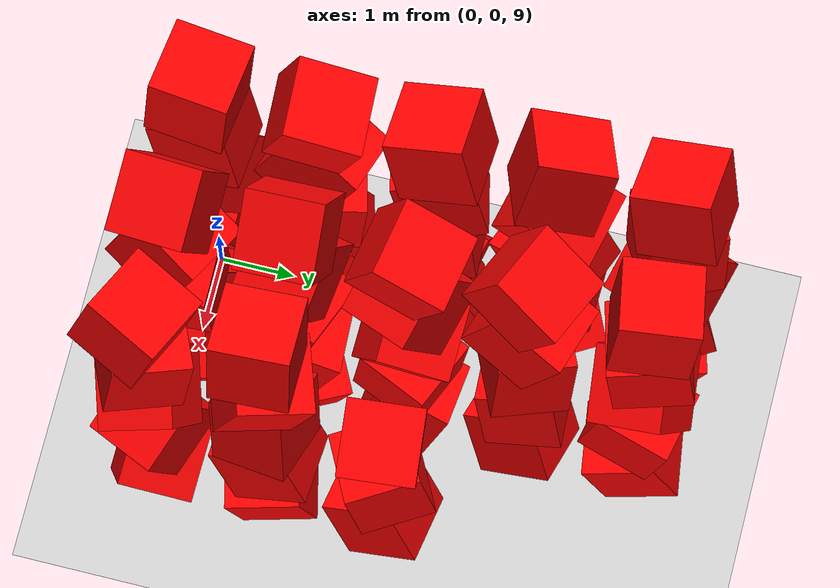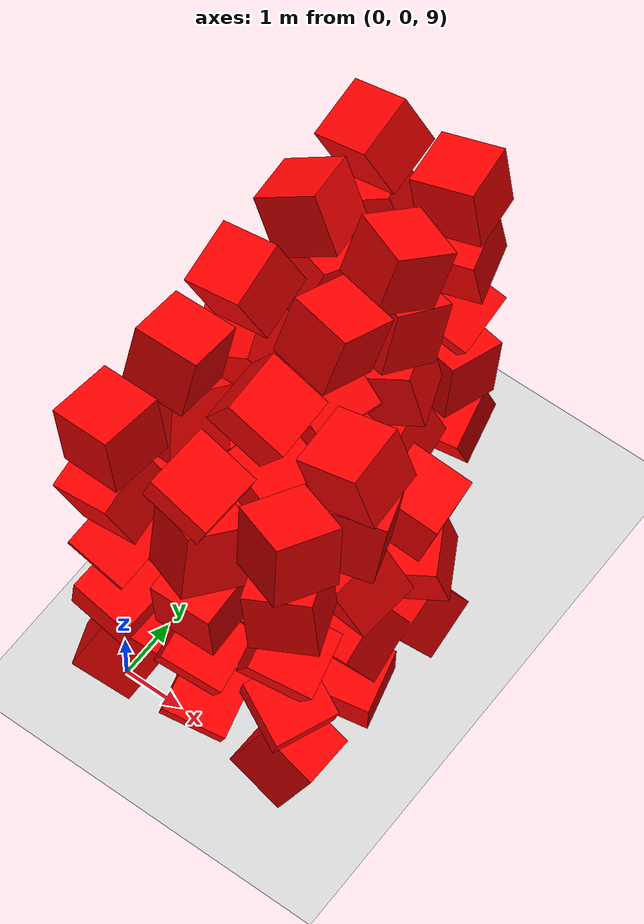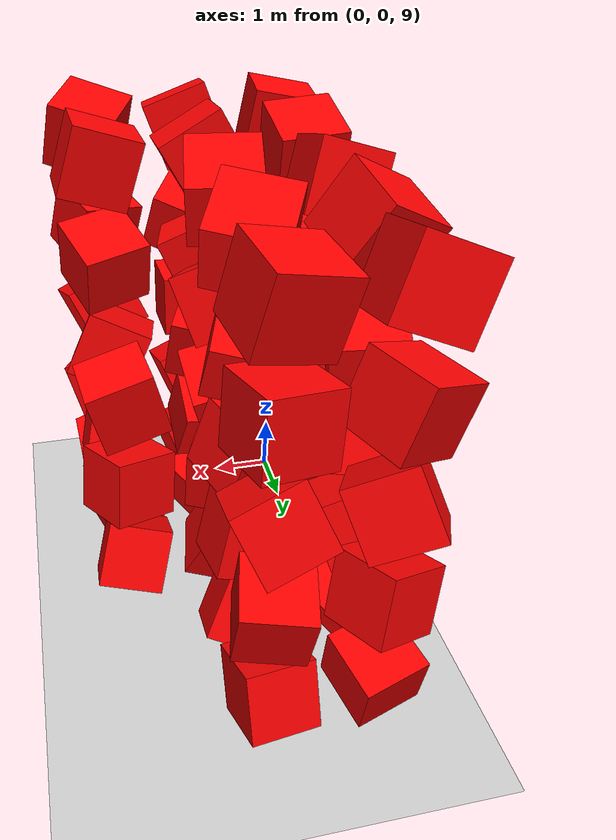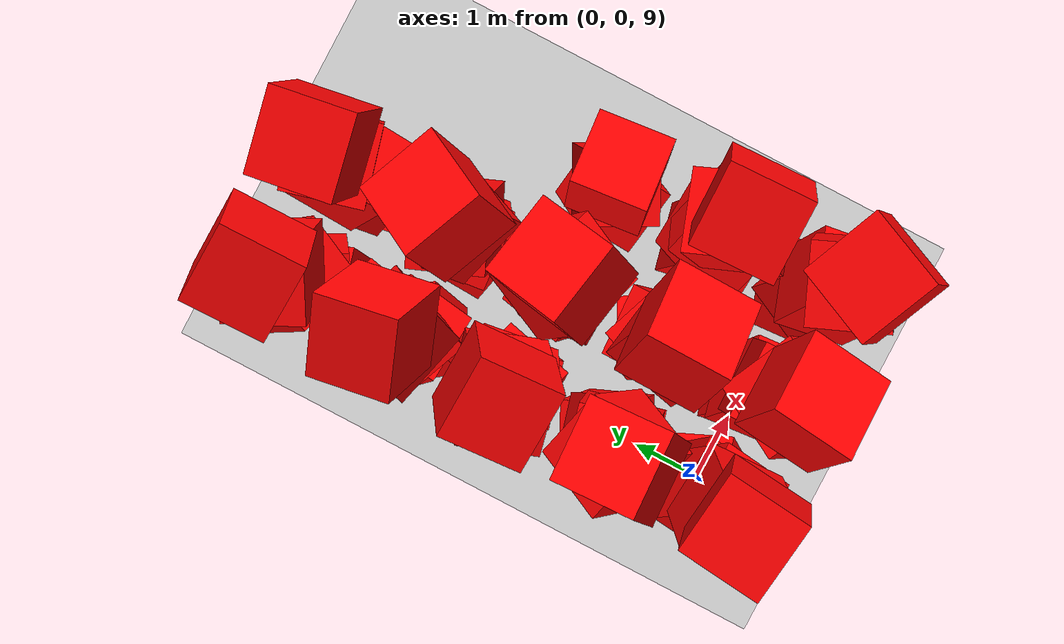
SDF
<sdf version="1.6">
 <world name="default">
  <model name="ground_plane">
   <pose>0 0 9  0 0 0</pose>
   <static>1</static>
   <link name="link">
    <collision name="collision">
     <geometry><plane><normal>0 0 1</normal><size>100 100</size></plane></geometry>
     <surface><bounce><restitution_coefficient>0</restitution_coefficient></bounce></surface>
    </collision>
    <visual name="visual">
     <geometry><plane><normal>0 0 1</normal><size>100 100</size></plane></geometry>
     <material>
      <ambient>0.8 0.8 0.8 1</ambient>
      <diffuse>0.8 0.8 0.8 1</diffuse>
      <specular>0.8 0.8 0.8 1</specular>
     </material>
    </visual>
   </link>
  </model>
  <model name="model_0_0_0">
   <pose>0 0 10 -0.445969 0.437062 0.232212</pose>
   <link name="box_link">
    <inertial>
     <inertia><ixx>1</ixx><ixy>0</ixy><ixz>0</ixz><iyy>1</iyy><iyz>0</iyz><izz>1</izz></inertia>
     <mass>6</mass>
    </inertial>
    <collision name="box_collision">
     <geometry><box><size>1 1 1</size></box></geometry>
     <surface><bounce><restitution_coefficient>0</restitution_coefficient></bounce></surface>
    </collision>
    <visual name="box_visual">
     <geometry><box><size>1 1 1</size></box></geometry>
     <material><ambient>1 0 0 1</ambient><diffuse>1 0 0 1</diffuse><specular>1 0 0 1</specular></material>
    </visual>
   </link>
  </model>
  <model name="model_0_0_1">
   <pose>0 0 11.5 0.162706 0.237268 -0.04658</pose>
   <link name="box_link">
    <inertial>
     <inertia><ixx>1</ixx><ixy>0</ixy><ixz>0</ixz><iyy>1</iyy><iyz>0</iyz><izz>1</izz></inertia>
     <mass>6</mass>
    </inertial>
    <collision name="box_collision">
     <geometry><box><size>1 1 1</size></box></geometry>
     <surface><bounce><restitution_coefficient>0</restitution_coefficient></bounce></surface>
    </collision>
    <visual name="box_visual">
     <geometry><box><size>1 1 1</size></box></geometry>
     <material><ambient>1 0 0 1</ambient><diffuse>1 0 0 1</diffuse><specular>1 0 0 1</specular></material>
    </visual>
   </link>
  </model>
  <model name="model_0_0_2">
   <pose>0 0 13 0.353318 0.359839 0.00596</pose>
   <link name="box_link">
    <inertial>
     <inertia><ixx>1</ixx><ixy>0</ixy><ixz>0</ixz><iyy>1</iyy><iyz>0</iyz><izz>1</izz></inertia>
     <mass>6</mass>
    </inertial>
    <collision name="box_collision">
     <geometry><box><size>1 1 1</size></box></geometry>
     <surface><bounce><restitution_coefficient>0</restitution_coefficient></bounce></surface>
    </collision>
    <visual name="box_visual">
     <geometry><box><size>1 1 1</size></box></geometry>
     <material><ambient>1 0 0 1</ambient><diffuse>1 0 0 1</diffuse><specular>1 0 0 1</specular></material>
    </visual>
   </link>
  </model>
  <model name="model_0_0_3">
   <pose>0 0 14.5 0.279494 -0.284371 -0.051229</pose>
   <link name="box_link">
    <inertial>
     <inertia><ixx>1</ixx><ixy>0</ixy><ixz>0</ixz><iyy>1</iyy><iyz>0</iyz><izz>1</izz></inertia>
     <mass>6</mass>
    </inertial>
    <collision name="box_collision">
     <geometry><box><size>1 1 1</size></box></geometry>
     <surface><bounce><restitution_coefficient>0</restitution_coefficient></bounce></surface>
    </collision>
    <visual name="box_visual">
     <geometry><box><size>1 1 1</size></box></geometry>
     <material><ambient>1 0 0 1</ambient><diffuse>1 0 0 1</diffuse><specular>1 0 0 1</specular></material>
    </visual>
   </link>
  </model>
  <model name="model_0_0_4">
   <pose>0 0 16 -0.03669 -0.197186 -0.095349</pose>
   <link name="box_link">
    <inertial>
     <inertia><ixx>1</ixx><ixy>0</ixy><ixz>0</ixz><iyy>1</iyy><iyz>0</iyz><izz>1</izz></inertia>
     <mass>6</mass>
    </inertial>
    <collision name="box_collision">
     <geometry><box><size>1 1 1</size></box></geometry>
     <surface><bounce><restitution_coefficient>0</restitution_coefficient></bounce></surface>
    </collision>
    <visual name="box_visual">
     <geometry><box><size>1 1 1</size></box></geometry>
     <material><ambient>1 0 0 1</ambient><diffuse>1 0 0 1</diffuse><specular>1 0 0 1</specular></material>
    </visual>
   </link>
  </model>
  <model name="model_0_1_0">
   <pose>0 1.5 10 -0.444529 -0.146822 0.471578</pose>
   <link name="box_link">
    <inertial>
     <inertia><ixx>1</ixx><ixy>0</ixy><ixz>0</ixz><iyy>1</iyy><iyz>0</iyz><izz>1</izz></inertia>
     <mass>6</mass>
    </inertial>
    <collision name="box_collision">
     <geometry><box><size>1 1 1</size></box></geometry>
     <surface><bounce><restitution_coefficient>0</restitution_coefficient></bounce></surface>
    </collision>
    <visual name="box_visual">
     <geometry><box><size>1 1 1</size></box></geometry>
     <material><ambient>1 0 0 1</ambient><diffuse>1 0 0 1</diffuse><specular>1 0 0 1</specular></material>
    </visual>
   </link>
  </model>
  <model name="model_0_1_1">
   <pose>0 1.5 11.5 0.313697 0.087827 0.266329</pose>
   <link name="box_link">
    <inertial>
     <inertia><ixx>1</ixx><ixy>0</ixy><ixz>0</ixz><iyy>1</iyy><iyz>0</iyz><izz>1</izz></inertia>
     <mass>6</mass>
    </inertial>
    <collision name="box_collision">
     <geometry><box><size>1 1 1</size></box></geometry>
     <surface><bounce><restitution_coefficient>0</restitution_coefficient></bounce></surface>
    </collision>
    <visual name="box_visual">
     <geometry><box><size>1 1 1</size></box></geometry>
     <material><ambient>1 0 0 1</ambient><diffuse>1 0 0 1</diffuse><specular>1 0 0 1</specular></material>
    </visual>
   </link>
  </model>
  <model name="model_0_1_2">
   <pose>0 1.5 13 -0.097363 -0.144194 0.248824</pose>
   <link name="box_link">
    <inertial>
     <inertia><ixx>1</ixx><ixy>0</ixy><ixz>0</ixz><iyy>1</iyy><iyz>0</iyz><izz>1</izz></inertia>
     <mass>6</mass>
    </inertial>
    <collision name="box_collision">
     <geometry><box><size>1 1 1</size></box></geometry>
     <surface><bounce><restitution_coefficient>0</restitution_coefficient></bounce></surface>
    </collision>
    <visual name="box_visual">
     <geometry><box><size>1 1 1</size></box></geometry>
     <material><ambient>1 0 0 1</ambient><diffuse>1 0 0 1</diffuse><specular>1 0 0 1</specular></material>
    </visual>
   </link>
  </model>
  <model name="model_0_1_3">
   <pose>0 1.5 14.5 -0.411716 -0.452408 -0.238945</pose>
   <link name="box_link">
    <inertial>
     <inertia><ixx>1</ixx><ixy>0</ixy><ixz>0</ixz><iyy>1</iyy><iyz>0</iyz><izz>1</izz></inertia>
     <mass>6</mass>
    </inertial>
    <collision name="box_collision">
     <geometry><box><size>1 1 1</size></box></geometry>
     <surface><bounce><restitution_coefficient>0</restitution_coefficient></bounce></surface>
    </collision>
    <visual name="box_visual">
     <geometry><box><size>1 1 1</size></box></geometry>
     <material><ambient>1 0 0 1</ambient><diffuse>1 0 0 1</diffuse><specular>1 0 0 1</specular></material>
    </visual>
   </link>
  </model>
  <model name="model_0_1_4">
   <pose>0 1.5 16 -0.301174 0.051928 0.040391</pose>
   <link name="box_link">
    <inertial>
     <inertia><ixx>1</ixx><ixy>0</ixy><ixz>0</ixz><iyy>1</iyy><iyz>0</iyz><izz>1</izz></inertia>
     <mass>6</mass>
    </inertial>
    <collision name="box_collision">
     <geometry><box><size>1 1 1</size></box></geometry>
     <surface><bounce><restitution_coefficient>0</restitution_coefficient></bounce></surface>
    </collision>
    <visual name="box_visual">
     <geometry><box><size>1 1 1</size></box></geometry>
     <material><ambient>1 0 0 1</ambient><diffuse>1 0 0 1</diffuse><specular>1 0 0 1</specular></material>
    </visual>
   </link>
  </model>
  <model name="model_0_2_0">
   <pose>0 3 10 0.325412 -0.150021 0.2704</pose>
   <link name="box_link">
    <inertial>
     <inertia><ixx>1</ixx><ixy>0</ixy><ixz>0</ixz><iyy>1</iyy><iyz>0</iyz><izz>1</izz></inertia>
     <mass>6</mass>
    </inertial>
    <collision name="box_collision">
     <geometry><box><size>1 1 1</size></box></geometry>
     <surface><bounce><restitution_coefficient>0</restitution_coefficient></bounce></surface>
    </collision>
    <visual name="box_visual">
     <geometry><box><size>1 1 1</size></box></geometry>
     <material><ambient>1 0 0 1</ambient><diffuse>1 0 0 1</diffuse><specular>1 0 0 1</specular></material>
    </visual>
   </link>
  </model>
  <model name="model_0_2_1">
   <pose>0 3 11.5 -0.094698 0.330572 -0.26515</pose>
   <link name="box_link">
    <inertial>
     <inertia><ixx>1</ixx><ixy>0</ixy><ixz>0</ixz><iyy>1</iyy><iyz>0</iyz><izz>1</izz></inertia>
     <mass>6</mass>
    </inertial>
    <collision name="box_collision">
     <geometry><box><size>1 1 1</size></box></geometry>
     <surface><bounce><restitution_coefficient>0</restitution_coefficient></bounce></surface>
    </collision>
    <visual name="box_visual">
     <geometry><box><size>1 1 1</size></box></geometry>
     <material><ambient>1 0 0 1</ambient><diffuse>1 0 0 1</diffuse><specular>1 0 0 1</specular></material>
    </visual>
   </link>
  </model>
  <model name="model_0_2_2">
   <pose>0 3 13 0.198001 -0.426438 0.054277</pose>
   <link name="box_link">
    <inertial>
     <inertia><ixx>1</ixx><ixy>0</ixy><ixz>0</ixz><iyy>1</iyy><iyz>0</iyz><izz>1</izz></inertia>
     <mass>6</mass>
    </inertial>
    <collision name="box_collision">
     <geometry><box><size>1 1 1</size></box></geometry>
     <surface><bounce><restitution_coefficient>0</restitution_coefficient></bounce></surface>
    </collision>
    <visual name="box_visual">
     <geometry><box><size>1 1 1</size></box></geometry>
     <material><ambient>1 0 0 1</ambient><diffuse>1 0 0 1</diffuse><specular>1 0 0 1</specular></material>
    </visual>
   </link>
  </model>
  <model name="model_0_2_3">
   <pose>0 3 14.5 0.263427 -0.444841 0.21894</pose>
   <link name="box_link">
    <inertial>
     <inertia><ixx>1</ixx><ixy>0</ixy><ixz>0</ixz><iyy>1</iyy><iyz>0</iyz><izz>1</izz></inertia>
     <mass>6</mass>
    </inertial>
    <collision name="box_collision">
     <geometry><box><size>1 1 1</size></box></geometry>
     <surface><bounce><restitution_coefficient>0</restitution_coefficient></bounce></surface>
    </collision>
    <visual name="box_visual">
     <geometry><box><size>1 1 1</size></box></geometry>
     <material><ambient>1 0 0 1</ambient><diffuse>1 0 0 1</diffuse><specular>1 0 0 1</specular></material>
    </visual>
   </link>
  </model>
  <model name="model_0_2_4">
   <pose>0 3 16 0.292098 -0.297187 -0.040628</pose>
   <link name="box_link">
    <inertial>
     <inertia><ixx>1</ixx><ixy>0</ixy><ixz>0</ixz><iyy>1</iyy><iyz>0</iyz><izz>1</izz></inertia>
     <mass>6</mass>
    </inertial>
    <collision name="box_collision">
     <geometry><box><size>1 1 1</size></box></geometry>
     <surface><bounce><restitution_coefficient>0</restitution_coefficient></bounce></surface>
    </collision>
    <visual name="box_visual">
     <geometry><box><size>1 1 1</size></box></geometry>
     <material><ambient>1 0 0 1</ambient><diffuse>1 0 0 1</diffuse><specular>1 0 0 1</specular></material>
    </visual>
   </link>
  </model>
  <model name="model_0_3_0">
   <pose>0 4.5 10 -0.417755 0.391808 0.464083</pose>
   <link name="box_link">
    <inertial>
     <inertia><ixx>1</ixx><ixy>0</ixy><ixz>0</ixz><iyy>1</iyy><iyz>0</iyz><izz>1</izz></inertia>
     <mass>6</mass>
    </inertial>
    <collision name="box_collision">
     <geometry><box><size>1 1 1</size></box></geometry>
     <surface><bounce><restitution_coefficient>0</restitution_coefficient></bounce></surface>
    </collision>
    <visual name="box_visual">
     <geometry><box><size>1 1 1</size></box></geometry>
     <material><ambient>1 0 0 1</ambient><diffuse>1 0 0 1</diffuse><specular>1 0 0 1</specular></material>
    </visual>
   </link>
  </model>
  <model name="model_0_3_1">
   <pose>0 4.5 11.5 0.300886 0.329793 -0.049279</pose>
   <link name="box_link">
    <inertial>
     <inertia><ixx>1</ixx><ixy>0</ixy><ixz>0</ixz><iyy>1</iyy><iyz>0</iyz><izz>1</izz></inertia>
     <mass>6</mass>
    </inertial>
    <collision name="box_collision">
     <geometry><box><size>1 1 1</size></box></geometry>
     <surface><bounce><restitution_coefficient>0</restitution_coefficient></bounce></surface>
    </collision>
    <visual name="box_visual">
     <geometry><box><size>1 1 1</size></box></geometry>
     <material><ambient>1 0 0 1</ambient><diffuse>1 0 0 1</diffuse><specular>1 0 0 1</specular></material>
    </visual>
   </link>
  </model>
  <model name="model_0_3_2">
   <pose>0 4.5 13 0.46908 0.010174 -0.382881</pose>
   <link name="box_link">
    <inertial>
     <inertia><ixx>1</ixx><ixy>0</ixy><ixz>0</ixz><iyy>1</iyy><iyz>0</iyz><izz>1</izz></inertia>
     <mass>6</mass>
    </inertial>
    <collision name="box_collision">
     <geometry><box><size>1 1 1</size></box></geometry>
     <surface><bounce><restitution_coefficient>0</restitution_coefficient></bounce></surface>
    </collision>
    <visual name="box_visual">
     <geometry><box><size>1 1 1</size></box></geometry>
     <material><ambient>1 0 0 1</ambient><diffuse>1 0 0 1</diffuse><specular>1 0 0 1</specular></material>
    </visual>
   </link>
  </model>
  <model name="model_0_3_3">
   <pose>0 4.5 14.5 -0.49055 0.081027 -0.24292</pose>
   <link name="box_link">
    <inertial>
     <inertia><ixx>1</ixx><ixy>0</ixy><ixz>0</ixz><iyy>1</iyy><iyz>0</iyz><izz>1</izz></inertia>
     <mass>6</mass>
    </inertial>
    <collision name="box_collision">
     <geometry><box><size>1 1 1</size></box></geometry>
     <surface><bounce><restitution_coefficient>0</restitution_coefficient></bounce></surface>
    </collision>
    <visual name="box_visual">
     <geometry><box><size>1 1 1</size></box></geometry>
     <material><ambient>1 0 0 1</ambient><diffuse>1 0 0 1</diffuse><specular>1 0 0 1</specular></material>
    </visual>
   </link>
  </model>
  <model name="model_0_3_4">
   <pose>0 4.5 16 -0.314394 -0.475655 0.323114</pose>
   <link name="box_link">
    <inertial>
     <inertia><ixx>1</ixx><ixy>0</ixy><ixz>0</ixz><iyy>1</iyy><iyz>0</iyz><izz>1</izz></inertia>
     <mass>6</mass>
    </inertial>
    <collision name="box_collision">
     <geometry><box><size>1 1 1</size></box></geometry>
     <surface><bounce><restitution_coefficient>0</restitution_coefficient></bounce></surface>
    </collision>
    <visual name="box_visual">
     <geometry><box><size>1 1 1</size></box></geometry>
     <material><ambient>1 0 0 1</ambient><diffuse>1 0 0 1</diffuse><specular>1 0 0 1</specular></material>
    </visual>
   </link>
  </model>
  <model name="model_0_4_0">
   <pose>0 6 10 -0.227574 0.107794 0.261805</pose>
   <link name="box_link">
    <inertial>
     <inertia><ixx>1</ixx><ixy>0</ixy><ixz>0</ixz><iyy>1</iyy><iyz>0</iyz><izz>1</izz></inertia>
     <mass>6</mass>
    </inertial>
    <collision name="box_collision">
     <geometry><box><size>1 1 1</size></box></geometry>
     <surface><bounce><restitution_coefficient>0</restitution_coefficient></bounce></surface>
    </collision>
    <visual name="box_visual">
     <geometry><box><size>1 1 1</size></box></geometry>
     <material><ambient>1 0 0 1</ambient><diffuse>1 0 0 1</diffuse><specular>1 0 0 1</specular></material>
    </visual>
   </link>
  </model>
  <model name="model_0_4_1">
   <pose>0 6 11.5 0.170217 -0.314235 0.418764</pose>
   <link name="box_link">
    <inertial>
     <inertia><ixx>1</ixx><ixy>0</ixy><ixz>0</ixz><iyy>1</iyy><iyz>0</iyz><izz>1</izz></inertia>
     <mass>6</mass>
    </inertial>
    <collision name="box_collision">
     <geometry><box><size>1 1 1</size></box></geometry>
     <surface><bounce><restitution_coefficient>0</restitution_coefficient></bounce></surface>
    </collision>
    <visual name="box_visual">
     <geometry><box><size>1 1 1</size></box></geometry>
     <material><ambient>1 0 0 1</ambient><diffuse>1 0 0 1</diffuse><specular>1 0 0 1</specular></material>
    </visual>
   </link>
  </model>
  <model name="model_0_4_2">
   <pose>0 6 13 0.400062 0.448993 -0.292275</pose>
   <link name="box_link">
    <inertial>
     <inertia><ixx>1</ixx><ixy>0</ixy><ixz>0</ixz><iyy>1</iyy><iyz>0</iyz><izz>1</izz></inertia>
     <mass>6</mass>
    </inertial>
    <collision name="box_collision">
     <geometry><box><size>1 1 1</size></box></geometry>
     <surface><bounce><restitution_coefficient>0</restitution_coefficient></bounce></surface>
    </collision>
    <visual name="box_visual">
     <geometry><box><size>1 1 1</size></box></geometry>
     <material><ambient>1 0 0 1</ambient><diffuse>1 0 0 1</diffuse><specular>1 0 0 1</specular></material>
    </visual>
   </link>
  </model>
  <model name="model_0_4_3">
   <pose>0 6 14.5 -0.092668 -0.332408 0.475542</pose>
   <link name="box_link">
    <inertial>
     <inertia><ixx>1</ixx><ixy>0</ixy><ixz>0</ixz><iyy>1</iyy><iyz>0</iyz><izz>1</izz></inertia>
     <mass>6</mass>
    </inertial>
    <collision name="box_collision">
     <geometry><box><size>1 1 1</size></box></geometry>
     <surface><bounce><restitution_coefficient>0</restitution_coefficient></bounce></surface>
    </collision>
    <visual name="box_visual">
     <geometry><box><size>1 1 1</size></box></geometry>
     <material><ambient>1 0 0 1</ambient><diffuse>1 0 0 1</diffuse><specular>1 0 0 1</specular></material>
    </visual>
   </link>
  </model>
  <model name="model_0_4_4">
   <pose>0 6 16 0.257004 -0.379118 -0.092636</pose>
   <link name="box_link">
    <inertial>
     <inertia><ixx>1</ixx><ixy>0</ixy><ixz>0</ixz><iyy>1</iyy><iyz>0</iyz><izz>1</izz></inertia>
     <mass>6</mass>
    </inertial>
    <collision name="box_collision">
     <geometry><box><size>1 1 1</size></box></geometry>
     <surface><bounce><restitution_coefficient>0</restitution_coefficient></bounce></surface>
    </collision>
    <visual name="box_visual">
     <geometry><box><size>1 1 1</size></box></geometry>
     <material><ambient>1 0 0 1</ambient><diffuse>1 0 0 1</diffuse><specular>1 0 0 1</specular></material>
    </visual>
   </link>
  </model>
  <model name="model_1_0_0">
   <pose>1.5 0 10 0.354994 0.245428 0.266498</pose>
   <link name="box_link">
    <inertial>
     <inertia><ixx>1</ixx><ixy>0</ixy><ixz>0</ixz><iyy>1</iyy><iyz>0</iyz><izz>1</izz></inertia>
     <mass>6</mass>
    </inertial>
    <collision name="box_collision">
     <geometry><box><size>1 1 1</size></box></geometry>
     <surface><bounce><restitution_coefficient>0</restitution_coefficient></bounce></surface>
    </collision>
    <visual name="box_visual">
     <geometry><box><size>1 1 1</size></box></geometry>
     <material><ambient>1 0 0 1</ambient><diffuse>1 0 0 1</diffuse><specular>1 0 0 1</specular></material>
    </visual>
   </link>
  </model>
  <model name="model_1_0_1">
   <pose>1.5 0 11.5 0.331195 0.322869 0.196046</pose>
   <link name="box_link">
    <inertial>
     <inertia><ixx>1</ixx><ixy>0</ixy><ixz>0</ixz><iyy>1</iyy><iyz>0</iyz><izz>1</izz></inertia>
     <mass>6</mass>
    </inertial>
    <collision name="box_collision">
     <geometry><box><size>1 1 1</size></box></geometry>
     <surface><bounce><restitution_coefficient>0</restitution_coefficient></bounce></surface>
    </collision>
    <visual name="box_visual">
     <geometry><box><size>1 1 1</size></box></geometry>
     <material><ambient>1 0 0 1</ambient><diffuse>1 0 0 1</diffuse><specular>1 0 0 1</specular></material>
    </visual>
   </link>
  </model>
  <model name="model_1_0_2">
   <pose>1.5 0 13 0.068366 -0.022949 0.020605</pose>
   <link name="box_link">
    <inertial>
     <inertia><ixx>1</ixx><ixy>0</ixy><ixz>0</ixz><iyy>1</iyy><iyz>0</iyz><izz>1</izz></inertia>
     <mass>6</mass>
    </inertial>
    <collision name="box_collision">
     <geometry><box><size>1 1 1</size></box></geometry>
     <surface><bounce><restitution_coefficient>0</restitution_coefficient></bounce></surface>
    </collision>
    <visual name="box_visual">
     <geometry><box><size>1 1 1</size></box></geometry>
     <material><ambient>1 0 0 1</ambient><diffuse>1 0 0 1</diffuse><specular>1 0 0 1</specular></material>
    </visual>
   </link>
  </model>
  <model name="model_1_0_3">
   <pose>1.5 0 14.5 -0.299301 -0.334679 -0.422738</pose>
   <link name="box_link">
    <inertial>
     <inertia><ixx>1</ixx><ixy>0</ixy><ixz>0</ixz><iyy>1</iyy><iyz>0</iyz><izz>1</izz></inertia>
     <mass>6</mass>
    </inertial>
    <collision name="box_collision">
     <geometry><box><size>1 1 1</size></box></geometry>
     <surface><bounce><restitution_coefficient>0</restitution_coefficient></bounce></surface>
    </collision>
    <visual name="box_visual">
     <geometry><box><size>1 1 1</size></box></geometry>
     <material><ambient>1 0 0 1</ambient><diffuse>1 0 0 1</diffuse><specular>1 0 0 1</specular></material>
    </visual>
   </link>
  </model>
  <model name="model_1_0_4">
   <pose>1.5 0 16 0.187896 0.342837 -0.038506</pose>
   <link name="box_link">
    <inertial>
     <inertia><ixx>1</ixx><ixy>0</ixy><ixz>0</ixz><iyy>1</iyy><iyz>0</iyz><izz>1</izz></inertia>
     <mass>6</mass>
    </inertial>
    <collision name="box_collision">
     <geometry><box><size>1 1 1</size></box></geometry>
     <surface><bounce><restitution_coefficient>0</restitution_coefficient></bounce></surface>
    </collision>
    <visual name="box_visual">
     <geometry><box><size>1 1 1</size></box></geometry>
     <material><ambient>1 0 0 1</ambient><diffuse>1 0 0 1</diffuse><specular>1 0 0 1</specular></material>
    </visual>
   </link>
  </model>
  <model name="model_1_1_0">
   <pose>1.5 1.5 10 -0.175396 0.200267 0.47763</pose>
   <link name="box_link">
    <inertial>
     <inertia><ixx>1</ixx><ixy>0</ixy><ixz>0</ixz><iyy>1</iyy><iyz>0</iyz><izz>1</izz></inertia>
     <mass>6</mass>
    </inertial>
    <collision name="box_collision">
     <geometry><box><size>1 1 1</size></box></geometry>
     <surface><bounce><restitution_coefficient>0</restitution_coefficient></bounce></surface>
    </collision>
    <visual name="box_visual">
     <geometry><box><size>1 1 1</size></box></geometry>
     <material><ambient>1 0 0 1</ambient><diffuse>1 0 0 1</diffuse><specular>1 0 0 1</specular></material>
    </visual>
   </link>
  </model>
  <model name="model_1_1_1">
   <pose>1.5 1.5 11.5 -0.395518 -0.123414 0.050976</pose>
   <link name="box_link">
    <inertial>
     <inertia><ixx>1</ixx><ixy>0</ixy><ixz>0</ixz><iyy>1</iyy><iyz>0</iyz><izz>1</izz></inertia>
     <mass>6</mass>
    </inertial>
    <collision name="box_collision">
     <geometry><box><size>1 1 1</size></box></geometry>
     <surface><bounce><restitution_coefficient>0</restitution_coefficient></bounce></surface>
    </collision>
    <visual name="box_visual">
     <geometry><box><size>1 1 1</size></box></geometry>
     <material><ambient>1 0 0 1</ambient><diffuse>1 0 0 1</diffuse><specular>1 0 0 1</specular></material>
    </visual>
   </link>
  </model>
  <model name="model_1_1_2">
   <pose>1.5 1.5 13 -0.183462 -0.18323 -0.351025</pose>
   <link name="box_link">
    <inertial>
     <inertia><ixx>1</ixx><ixy>0</ixy><ixz>0</ixz><iyy>1</iyy><iyz>0</iyz><izz>1</izz></inertia>
     <mass>6</mass>
    </inertial>
    <collision name="box_collision">
     <geometry><box><size>1 1 1</size></box></geometry>
     <surface><bounce><restitution_coefficient>0</restitution_coefficient></bounce></surface>
    </collision>
    <visual name="box_visual">
     <geometry><box><size>1 1 1</size></box></geometry>
     <material><ambient>1 0 0 1</ambient><diffuse>1 0 0 1</diffuse><specular>1 0 0 1</specular></material>
    </visual>
   </link>
  </model>
  <model name="model_1_1_3">
   <pose>1.5 1.5 14.5 0.096896 0.428017 -0.173226</pose>
   <link name="box_link">
    <inertial>
     <inertia><ixx>1</ixx><ixy>0</ixy><ixz>0</ixz><iyy>1</iyy><iyz>0</iyz><izz>1</izz></inertia>
     <mass>6</mass>
    </inertial>
    <collision name="box_collision">
     <geometry><box><size>1 1 1</size></box></geometry>
     <surface><bounce><restitution_coefficient>0</restitution_coefficient></bounce></surface>
    </collision>
    <visual name="box_visual">
     <geometry><box><size>1 1 1</size></box></geometry>
     <material><ambient>1 0 0 1</ambient><diffuse>1 0 0 1</diffuse><specular>1 0 0 1</specular></material>
    </visual>
   </link>
  </model>
  <model name="model_1_1_4">
   <pose>1.5 1.5 16 0.131744 0.494762 0.05059</pose>
   <link name="box_link">
    <inertial>
     <inertia><ixx>1</ixx><ixy>0</ixy><ixz>0</ixz><iyy>1</iyy><iyz>0</iyz><izz>1</izz></inertia>
     <mass>6</mass>
    </inertial>
    <collision name="box_collision">
     <geometry><box><size>1 1 1</size></box></geometry>
     <surface><bounce><restitution_coefficient>0</restitution_coefficient></bounce></surface>
    </collision>
    <visual name="box_visual">
     <geometry><box><size>1 1 1</size></box></geometry>
     <material><ambient>1 0 0 1</ambient><diffuse>1 0 0 1</diffuse><specular>1 0 0 1</specular></material>
    </visual>
   </link>
  </model>
  <model name="model_1_2_0">
   <pose>1.5 3 10 -0.304631 -0.370278 -0.084566</pose>
   <link name="box_link">
    <inertial>
     <inertia><ixx>1</ixx><ixy>0</ixy><ixz>0</ixz><iyy>1</iyy><iyz>0</iyz><izz>1</izz></inertia>
     <mass>6</mass>
    </inertial>
    <collision name="box_collision">
     <geometry><box><size>1 1 1</size></box></geometry>
     <surface><bounce><restitution_coefficient>0</restitution_coefficient></bounce></surface>
    </collision>
    <visual name="box_visual">
     <geometry><box><size>1 1 1</size></box></geometry>
     <material><ambient>1 0 0 1</ambient><diffuse>1 0 0 1</diffuse><specular>1 0 0 1</specular></material>
    </visual>
   </link>
  </model>
  <model name="model_1_2_1">
   <pose>1.5 3 11.5 -0.072463 -0.069379 -0.4</pose>
   <link name="box_link">
    <inertial>
     <inertia><ixx>1</ixx><ixy>0</ixy><ixz>0</ixz><iyy>1</iyy><iyz>0</iyz><izz>1</izz></inertia>
     <mass>6</mass>
    </inertial>
    <collision name="box_collision">
     <geometry><box><size>1 1 1</size></box></geometry>
     <surface><bounce><restitution_coefficient>0</restitution_coefficient></bounce></surface>
    </collision>
    <visual name="box_visual">
     <geometry><box><size>1 1 1</size></box></geometry>
     <material><ambient>1 0 0 1</ambient><diffuse>1 0 0 1</diffuse><specular>1 0 0 1</specular></material>
    </visual>
   </link>
  </model>
  <model name="model_1_2_2">
   <pose>1.5 3 13 -0.402596 0.243529 -0.040504</pose>
   <link name="box_link">
    <inertial>
     <inertia><ixx>1</ixx><ixy>0</ixy><ixz>0</ixz><iyy>1</iyy><iyz>0</iyz><izz>1</izz></inertia>
     <mass>6</mass>
    </inertial>
    <collision name="box_collision">
     <geometry><box><size>1 1 1</size></box></geometry>
     <surface><bounce><restitution_coefficient>0</restitution_coefficient></bounce></surface>
    </collision>
    <visual name="box_visual">
     <geometry><box><size>1 1 1</size></box></geometry>
     <material><ambient>1 0 0 1</ambient><diffuse>1 0 0 1</diffuse><specular>1 0 0 1</specular></material>
    </visual>
   </link>
  </model>
  <model name="model_1_2_3">
   <pose>1.5 3 14.5 0.31041 0.428389 -0.304969</pose>
   <link name="box_link">
    <inertial>
     <inertia><ixx>1</ixx><ixy>0</ixy><ixz>0</ixz><iyy>1</iyy><iyz>0</iyz><izz>1</izz></inertia>
     <mass>6</mass>
    </inertial>
    <collision name="box_collision">
     <geometry><box><size>1 1 1</size></box></geometry>
     <surface><bounce><restitution_coefficient>0</restitution_coefficient></bounce></surface>
    </collision>
    <visual name="box_visual">
     <geometry><box><size>1 1 1</size></box></geometry>
     <material><ambient>1 0 0 1</ambient><diffuse>1 0 0 1</diffuse><specular>1 0 0 1</specular></material>
    </visual>
   </link>
  </model>
  <model name="model_1_2_4">
   <pose>1.5 3 16 -0.401715 0.014026 -0.178878</pose>
   <link name="box_link">
    <inertial>
     <inertia><ixx>1</ixx><ixy>0</ixy><ixz>0</ixz><iyy>1</iyy><iyz>0</iyz><izz>1</izz></inertia>
     <mass>6</mass>
    </inertial>
    <collision name="box_collision">
     <geometry><box><size>1 1 1</size></box></geometry>
     <surface><bounce><restitution_coefficient>0</restitution_coefficient></bounce></surface>
    </collision>
    <visual name="box_visual">
     <geometry><box><size>1 1 1</size></box></geometry>
     <material><ambient>1 0 0 1</ambient><diffuse>1 0 0 1</diffuse><specular>1 0 0 1</specular></material>
    </visual>
   </link>
  </model>
  <model name="model_1_3_0">
   <pose>1.5 4.5 10 0.478232 -0.401519 -0.246683</pose>
   <link name="box_link">
    <inertial>
     <inertia><ixx>1</ixx><ixy>0</ixy><ixz>0</ixz><iyy>1</iyy><iyz>0</iyz><izz>1</izz></inertia>
     <mass>6</mass>
    </inertial>
    <collision name="box_collision">
     <geometry><box><size>1 1 1</size></box></geometry>
     <surface><bounce><restitution_coefficient>0</restitution_coefficient></bounce></surface>
    </collision>
    <visual name="box_visual">
     <geometry><box><size>1 1 1</size></box></geometry>
     <material><ambient>1 0 0 1</ambient><diffuse>1 0 0 1</diffuse><specular>1 0 0 1</specular></material>
    </visual>
   </link>
  </model>
  <model name="model_1_3_1">
   <pose>1.5 4.5 11.5 0.205103 -0.295949 0.05506</pose>
   <link name="box_link">
    <inertial>
     <inertia><ixx>1</ixx><ixy>0</ixy><ixz>0</ixz><iyy>1</iyy><iyz>0</iyz><izz>1</izz></inertia>
     <mass>6</mass>
    </inertial>
    <collision name="box_collision">
     <geometry><box><size>1 1 1</size></box></geometry>
     <surface><bounce><restitution_coefficient>0</restitution_coefficient></bounce></surface>
    </collision>
    <visual name="box_visual">
     <geometry><box><size>1 1 1</size></box></geometry>
     <material><ambient>1 0 0 1</ambient><diffuse>1 0 0 1</diffuse><specular>1 0 0 1</specular></material>
    </visual>
   </link>
  </model>
  <model name="model_1_3_2">
   <pose>1.5 4.5 13 -0.134601 -0.289928 0.411441</pose>
   <link name="box_link">
    <inertial>
     <inertia><ixx>1</ixx><ixy>0</ixy><ixz>0</ixz><iyy>1</iyy><iyz>0</iyz><izz>1</izz></inertia>
     <mass>6</mass>
    </inertial>
    <collision name="box_collision">
     <geometry><box><size>1 1 1</size></box></geometry>
     <surface><bounce><restitution_coefficient>0</restitution_coefficient></bounce></surface>
    </collision>
    <visual name="box_visual">
     <geometry><box><size>1 1 1</size></box></geometry>
     <material><ambient>1 0 0 1</ambient><diffuse>1 0 0 1</diffuse><specular>1 0 0 1</specular></material>
    </visual>
   </link>
  </model>
  <model name="model_1_3_3">
   <pose>1.5 4.5 14.5 -0.423302 -0.205102 -0.28686</pose>
   <link name="box_link">
    <inertial>
     <inertia><ixx>1</ixx><ixy>0</ixy><ixz>0</ixz><iyy>1</iyy><iyz>0</iyz><izz>1</izz></inertia>
     <mass>6</mass>
    </inertial>
    <collision name="box_collision">
     <geometry><box><size>1 1 1</size></box></geometry>
     <surface><bounce><restitution_coefficient>0</restitution_coefficient></bounce></surface>
    </collision>
    <visual name="box_visual">
     <geometry><box><size>1 1 1</size></box></geometry>
     <material><ambient>1 0 0 1</ambient><diffuse>1 0 0 1</diffuse><specular>1 0 0 1</specular></material>
    </visual>
   </link>
  </model>
  <model name="model_1_3_4">
   <pose>1.5 4.5 16 -0.425594 -0.138593 -0.41062</pose>
   <link name="box_link">
    <inertial>
     <inertia><ixx>1</ixx><ixy>0</ixy><ixz>0</ixz><iyy>1</iyy><iyz>0</iyz><izz>1</izz></inertia>
     <mass>6</mass>
    </inertial>
    <collision name="box_collision">
     <geometry><box><size>1 1 1</size></box></geometry>
     <surface><bounce><restitution_coefficient>0</restitution_coefficient></bounce></surface>
    </collision>
    <visual name="box_visual">
     <geometry><box><size>1 1 1</size></box></geometry>
     <material><ambient>1 0 0 1</ambient><diffuse>1 0 0 1</diffuse><specular>1 0 0 1</specular></material>
    </visual>
   </link>
  </model>
  <model name="model_1_4_0">
   <pose>1.5 6 10 0.369977 -0.03656 0.142431</pose>
   <link name="box_link">
    <inertial>
     <inertia><ixx>1</ixx><ixy>0</ixy><ixz>0</ixz><iyy>1</iyy><iyz>0</iyz><izz>1</izz></inertia>
     <mass>6</mass>
    </inertial>
    <collision name="box_collision">
     <geometry><box><size>1 1 1</size></box></geometry>
     <surface><bounce><restitution_coefficient>0</restitution_coefficient></bounce></surface>
    </collision>
    <visual name="box_visual">
     <geometry><box><size>1 1 1</size></box></geometry>
     <material><ambient>1 0 0 1</ambient><diffuse>1 0 0 1</diffuse><specular>1 0 0 1</specular></material>
    </visual>
   </link>
  </model>
  <model name="model_1_4_1">
   <pose>1.5 6 11.5 -0.218769 -0.102826 -0.212903</pose>
   <link name="box_link">
    <inertial>
     <inertia><ixx>1</ixx><ixy>0</ixy><ixz>0</ixz><iyy>1</iyy><iyz>0</iyz><izz>1</izz></inertia>
     <mass>6</mass>
    </inertial>
    <collision name="box_collision">
     <geometry><box><size>1 1 1</size></box></geometry>
     <surface><bounce><restitution_coefficient>0</restitution_coefficient></bounce></surface>
    </collision>
    <visual name="box_visual">
     <geometry><box><size>1 1 1</size></box></geometry>
     <material><ambient>1 0 0 1</ambient><diffuse>1 0 0 1</diffuse><specular>1 0 0 1</specular></material>
    </visual>
   </link>
  </model>
  <model name="model_1_4_2">
   <pose>1.5 6 13 0.403949 0.377601 0.111663</pose>
   <link name="box_link">
    <inertial>
     <inertia><ixx>1</ixx><ixy>0</ixy><ixz>0</ixz><iyy>1</iyy><iyz>0</iyz><izz>1</izz></inertia>
     <mass>6</mass>
    </inertial>
    <collision name="box_collision">
     <geometry><box><size>1 1 1</size></box></geometry>
     <surface><bounce><restitution_coefficient>0</restitution_coefficient></bounce></surface>
    </collision>
    <visual name="box_visual">
     <geometry><box><size>1 1 1</size></box></geometry>
     <material><ambient>1 0 0 1</ambient><diffuse>1 0 0 1</diffuse><specular>1 0 0 1</specular></material>
    </visual>
   </link>
  </model>
  <model name="model_1_4_3">
   <pose>1.5 6 14.5 0.121707 -0.125929 0.244155</pose>
   <link name="box_link">
    <inertial>
     <inertia><ixx>1</ixx><ixy>0</ixy><ixz>0</ixz><iyy>1</iyy><iyz>0</iyz><izz>1</izz></inertia>
     <mass>6</mass>
    </inertial>
    <collision name="box_collision">
     <geometry><box><size>1 1 1</size></box></geometry>
     <surface><bounce><restitution_coefficient>0</restitution_coefficient></bounce></surface>
    </collision>
    <visual name="box_visual">
     <geometry><box><size>1 1 1</size></box></geometry>
     <material><ambient>1 0 0 1</ambient><diffuse>1 0 0 1</diffuse><specular>1 0 0 1</specular></material>
    </visual>
   </link>
  </model>
  <model name="model_1_4_4">
   <pose>1.5 6 16 -0.101131 -0.223856 0.170884</pose>
   <link name="box_link">
    <inertial>
     <inertia><ixx>1</ixx><ixy>0</ixy><ixz>0</ixz><iyy>1</iyy><iyz>0</iyz><izz>1</izz></inertia>
     <mass>6</mass>
    </inertial>
    <collision name="box_collision">
     <geometry><box><size>1 1 1</size></box></geometry>
     <surface><bounce><restitution_coefficient>0</restitution_coefficient></bounce></surface>
    </collision>
    <visual name="box_visual">
     <geometry><box><size>1 1 1</size></box></geometry>
     <material><ambient>1 0 0 1</ambient><diffuse>1 0 0 1</diffuse><specular>1 0 0 1</specular></material>
    </visual>
   </link>
  </model>
  <model name="model_2_0_0">
   <pose>3 0 10 -0.283591 0.406647 -0.062603</pose>
   <link name="box_link">
    <inertial>
     <inertia><ixx>1</ixx><ixy>0</ixy><ixz>0</ixz><iyy>1</iyy><iyz>0</iyz><izz>1</izz></inertia>
     <mass>6</mass>
    </inertial>
    <collision name="box_collision">
     <geometry><box><size>1 1 1</size></box></geometry>
     <surface><bounce><restitution_coefficient>0</restitution_coefficient></bounce></surface>
    </collision>
    <visual name="box_visual">
     <geometry><box><size>1 1 1</size></box></geometry>
     <material><ambient>1 0 0 1</ambient><diffuse>1 0 0 1</diffuse><specular>1 0 0 1</specular></material>
    </visual>
   </link>
  </model>
  <model name="model_2_0_1">
   <pose>3 0 11.5 0.136025 0.355144 -0.394951</pose>
   <link name="box_link">
    <inertial>
     <inertia><ixx>1</ixx><ixy>0</ixy><ixz>0</ixz><iyy>1</iyy><iyz>0</iyz><izz>1</izz></inertia>
     <mass>6</mass>
    </inertial>
    <collision name="box_collision">
     <geometry><box><size>1 1 1</size></box></geometry>
     <surface><bounce><restitution_coefficient>0</restitution_coefficient></bounce></surface>
    </collision>
    <visual name="box_visual">
     <geometry><box><size>1 1 1</size></box></geometry>
     <material><ambient>1 0 0 1</ambient><diffuse>1 0 0 1</diffuse><specular>1 0 0 1</specular></material>
    </visual>
   </link>
  </model>
  <model name="model_2_0_2">
   <pose>3 0 13 0.349044 0.33472 0.296917</pose>
   <link name="box_link">
    <inertial>
     <inertia><ixx>1</ixx><ixy>0</ixy><ixz>0</ixz><iyy>1</iyy><iyz>0</iyz><izz>1</izz></inertia>
     <mass>6</mass>
    </inertial>
    <collision name="box_collision">
     <geometry><box><size>1 1 1</size></box></geometry>
     <surface><bounce><restitution_coefficient>0</restitution_coefficient></bounce></surface>
    </collision>
    <visual name="box_visual">
     <geometry><box><size>1 1 1</size></box></geometry>
     <material><ambient>1 0 0 1</ambient><diffuse>1 0 0 1</diffuse><specular>1 0 0 1</specular></material>
    </visual>
   </link>
  </model>
  <model name="model_2_0_3">
   <pose>3 0 14.5 -0.19994 -0.152393 0.420449</pose>
   <link name="box_link">
    <inertial>
     <inertia><ixx>1</ixx><ixy>0</ixy><ixz>0</ixz><iyy>1</iyy><iyz>0</iyz><izz>1</izz></inertia>
     <mass>6</mass>
    </inertial>
    <collision name="box_collision">
     <geometry><box><size>1 1 1</size></box></geometry>
     <surface><bounce><restitution_coefficient>0</restitution_coefficient></bounce></surface>
    </collision>
    <visual name="box_visual">
     <geometry><box><size>1 1 1</size></box></geometry>
     <material><ambient>1 0 0 1</ambient><diffuse>1 0 0 1</diffuse><specular>1 0 0 1</specular></material>
    </visual>
   </link>
  </model>
  <model name="model_2_0_4">
   <pose>3 0 16 -0.194524 -0.262054 -0.389175</pose>
   <link name="box_link">
    <inertial>
     <inertia><ixx>1</ixx><ixy>0</ixy><ixz>0</ixz><iyy>1</iyy><iyz>0</iyz><izz>1</izz></inertia>
     <mass>6</mass>
    </inertial>
    <collision name="box_collision">
     <geometry><box><size>1 1 1</size></box></geometry>
     <surface><bounce><restitution_coefficient>0</restitution_coefficient></bounce></surface>
    </collision>
    <visual name="box_visual">
     <geometry><box><size>1 1 1</size></box></geometry>
     <material><ambient>1 0 0 1</ambient><diffuse>1 0 0 1</diffuse><specular>1 0 0 1</specular></material>
    </visual>
   </link>
  </model>
  <model name="model_2_1_0">
   <pose>3 1.5 10 0.219018 0.092225 0.228936</pose>
   <link name="box_link">
    <inertial>
     <inertia><ixx>1</ixx><ixy>0</ixy><ixz>0</ixz><iyy>1</iyy><iyz>0</iyz><izz>1</izz></inertia>
     <mass>6</mass>
    </inertial>
    <collision name="box_collision">
     <geometry><box><size>1 1 1</size></box></geometry>
     <surface><bounce><restitution_coefficient>0</restitution_coefficient></bounce></surface>
    </collision>
    <visual name="box_visual">
     <geometry><box><size>1 1 1</size></box></geometry>
     <material><ambient>1 0 0 1</ambient><diffuse>1 0 0 1</diffuse><specular>1 0 0 1</specular></material>
    </visual>
   </link>
  </model>
  <model name="model_2_1_1">
   <pose>3 1.5 11.5 0.412897 -0.224677 -0.049431</pose>
   <link name="box_link">
    <inertial>
     <inertia><ixx>1</ixx><ixy>0</ixy><ixz>0</ixz><iyy>1</iyy><iyz>0</iyz><izz>1</izz></inertia>
     <mass>6</mass>
    </inertial>
    <collision name="box_collision">
     <geometry><box><size>1 1 1</size></box></geometry>
     <surface><bounce><restitution_coefficient>0</restitution_coefficient></bounce></surface>
    </collision>
    <visual name="box_visual">
     <geometry><box><size>1 1 1</size></box></geometry>
     <material><ambient>1 0 0 1</ambient><diffuse>1 0 0 1</diffuse><specular>1 0 0 1</specular></material>
    </visual>
   </link>
  </model>
  <model name="model_2_1_2">
   <pose>3 1.5 13 0.23988 -0.413764 -0.261685</pose>
   <link name="box_link">
    <inertial>
     <inertia><ixx>1</ixx><ixy>0</ixy><ixz>0</ixz><iyy>1</iyy><iyz>0</iyz><izz>1</izz></inertia>
     <mass>6</mass>
    </inertial>
    <collision name="box_collision">
     <geometry><box><size>1 1 1</size></box></geometry>
     <surface><bounce><restitution_coefficient>0</restitution_coefficient></bounce></surface>
    </collision>
    <visual name="box_visual">
     <geometry><box><size>1 1 1</size></box></geometry>
     <material><ambient>1 0 0 1</ambient><diffuse>1 0 0 1</diffuse><specular>1 0 0 1</specular></material>
    </visual>
   </link>
  </model>
  <model name="model_2_1_3">
   <pose>3 1.5 14.5 -0.325931 0.091803 0.329326</pose>
   <link name="box_link">
    <inertial>
     <inertia><ixx>1</ixx><ixy>0</ixy><ixz>0</ixz><iyy>1</iyy><iyz>0</iyz><izz>1</izz></inertia>
     <mass>6</mass>
    </inertial>
    <collision name="box_collision">
     <geometry><box><size>1 1 1</size></box></geometry>
     <surface><bounce><restitution_coefficient>0</restitution_coefficient></bounce></surface>
    </collision>
    <visual name="box_visual">
     <geometry><box><size>1 1 1</size></box></geometry>
     <material><ambient>1 0 0 1</ambient><diffuse>1 0 0 1</diffuse><specular>1 0 0 1</specular></material>
    </visual>
   </link>
  </model>
  <model name="model_2_1_4">
   <pose>3 1.5 16 0.035681 -0.321896 0.024914</pose>
   <link name="box_link">
    <inertial>
     <inertia><ixx>1</ixx><ixy>0</ixy><ixz>0</ixz><iyy>1</iyy><iyz>0</iyz><izz>1</izz></inertia>
     <mass>6</mass>
    </inertial>
    <collision name="box_collision">
     <geometry><box><size>1 1 1</size></box></geometry>
     <surface><bounce><restitution_coefficient>0</restitution_coefficient></bounce></surface>
    </collision>
    <visual name="box_visual">
     <geometry><box><size>1 1 1</size></box></geometry>
     <material><ambient>1 0 0 1</ambient><diffuse>1 0 0 1</diffuse><specular>1 0 0 1</specular></material>
    </visual>
   </link>
  </model>
  <model name="model_2_2_0">
   <pose>3 3 10 0.484356 -0.24594 -0.151036</pose>
   <link name="box_link">
    <inertial>
     <inertia><ixx>1</ixx><ixy>0</ixy><ixz>0</ixz><iyy>1</iyy><iyz>0</iyz><izz>1</izz></inertia>
     <mass>6</mass>
    </inertial>
    <collision name="box_collision">
     <geometry><box><size>1 1 1</size></box></geometry>
     <surface><bounce><restitution_coefficient>0</restitution_coefficient></bounce></surface>
    </collision>
    <visual name="box_visual">
     <geometry><box><size>1 1 1</size></box></geometry>
     <material><ambient>1 0 0 1</ambient><diffuse>1 0 0 1</diffuse><specular>1 0 0 1</specular></material>
    </visual>
   </link>
  </model>
  <model name="model_2_2_1">
   <pose>3 3 11.5 0.168977 -0.194917 0.46727</pose>
   <link name="box_link">
    <inertial>
     <inertia><ixx>1</ixx><ixy>0</ixy><ixz>0</ixz><iyy>1</iyy><iyz>0</iyz><izz>1</izz></inertia>
     <mass>6</mass>
    </inertial>
    <collision name="box_collision">
     <geometry><box><size>1 1 1</size></box></geometry>
     <surface><bounce><restitution_coefficient>0</restitution_coefficient></bounce></surface>
    </collision>
    <visual name="box_visual">
     <geometry><box><size>1 1 1</size></box></geometry>
     <material><ambient>1 0 0 1</ambient><diffuse>1 0 0 1</diffuse><specular>1 0 0 1</specular></material>
    </visual>
   </link>
  </model>
  <model name="model_2_2_2">
   <pose>3 3 13 -0.031799 0.249432 0.090727</pose>
   <link name="box_link">
    <inertial>
     <inertia><ixx>1</ixx><ixy>0</ixy><ixz>0</ixz><iyy>1</iyy><iyz>0</iyz><izz>1</izz></inertia>
     <mass>6</mass>
    </inertial>
    <collision name="box_collision">
     <geometry><box><size>1 1 1</size></box></geometry>
     <surface><bounce><restitution_coefficient>0</restitution_coefficient></bounce></surface>
    </collision>
    <visual name="box_visual">
     <geometry><box><size>1 1 1</size></box></geometry>
     <material><ambient>1 0 0 1</ambient><diffuse>1 0 0 1</diffuse><specular>1 0 0 1</specular></material>
    </visual>
   </link>
  </model>
 </world>
</sdf>
